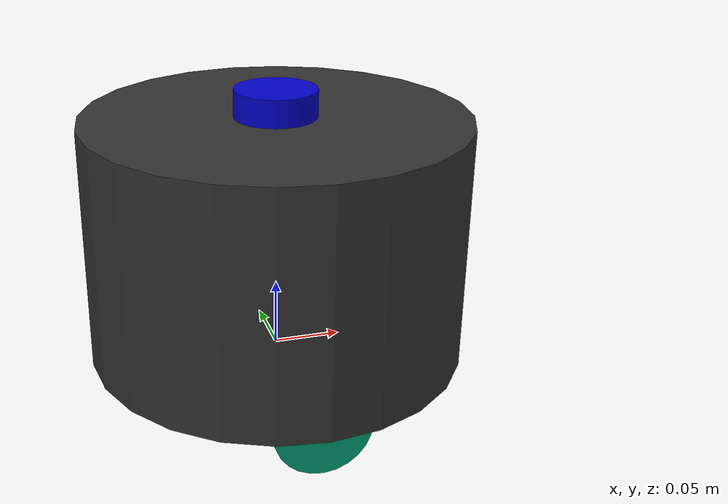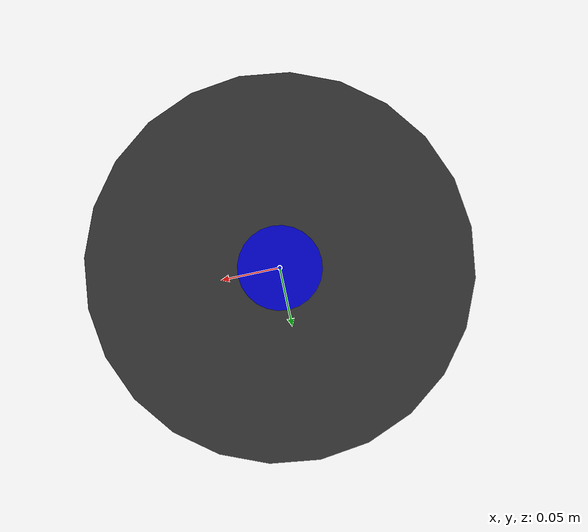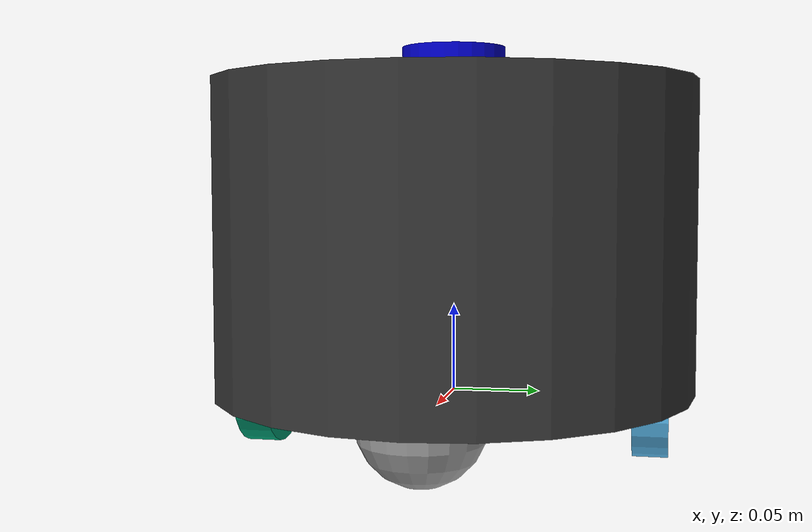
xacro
<?xml version="1.0" ?>
<robot name="independent_robot" xmlns:xacro="http://ros.org/wiki/xacro">

  <xacro:property name="base_radius" value="0.14"/>
  <xacro:property name="base_length" value="0.18"/>
  <xacro:property name="base_mass"   value="2.5"/>

  <xacro:property name="wheel_radius" value="0.035"/>
  <xacro:property name="wheel_length" value="0.02"/>
  <xacro:property name="wheel_mass"   value="0.2"/>
  <xacro:property name="wheel_track"  value="0.23"/>

  <link name="base_link">
    <visual>
      <origin xyz="0 0 ${base_length/2}" rpy="0 0 3.14159"/>
      <geometry>
        <cylinder radius="${base_radius}" length="${base_length}"/>
      </geometry>
      <material name="dark_grey">
        <color rgba="0.2 0.2 0.2 1.0"/>
      </material>
    </visual>
    <collision>
      <origin xyz="0 0 ${base_length/2}" rpy="0 0 0"/>
      <geometry>
        <cylinder radius="${base_radius}" length="${base_length}"/>
      </geometry>
    </collision>
    <inertial>
      <origin xyz="0 0 ${base_length/2}" rpy="0 0 0"/>
      <mass value="${base_mass}"/>
      <inertia ixx="0.0189" ixy="0.0" ixz="0.0" iyy="0.0189" iyz="0.0" izz="0.0245"/>
    </inertial>
  </link>

  <link name="drive_left_wheel">
    <visual>
      <geometry>
        <cylinder radius="${wheel_radius}" length="${wheel_length}"/>
      </geometry>
    </visual>
    <collision>
      <geometry>
        <cylinder radius="${wheel_radius}" length="${wheel_length}"/>
      </geometry>
    </collision>
    <inertial>
    <mass value="${wheel_mass}"/>
    <inertia ixx="0.000067" ixy="0.0" ixz="0.0"
            iyy="0.000067" iyz="0.0"
            izz="0.00012"/>
    </inertial>
  </link>
  <joint name="drive_left_wheel_joint" type="continuous">
    <parent link="base_link"/>
    <child link="drive_left_wheel"/>
    <origin xyz="0 ${wheel_track/2} 0" rpy="-1.5708 0 0"/>
    <axis xyz="0 0 1"/>
  </joint>

  <link name="drive_right_wheel">
    <visual>
      <geometry>
        <cylinder radius="${wheel_radius}" length="${wheel_length}"/>
      </geometry>
    </visual>
    <collision>
      <geometry>
        <cylinder radius="${wheel_radius}" length="${wheel_length}"/>
      </geometry>
    </collision>
    <inertial>
      <mass value="${wheel_mass}"/>
      <inertia ixx="0.000067" ixy="0.0" ixz="0.0"
              iyy="0.000067" iyz="0.0"
              izz="0.00012"/>
    </inertial>
  </link>

  <joint name="drive_right_wheel_joint" type="continuous">
    <parent link="base_link"/>
    <child link="drive_right_wheel"/>
    <origin xyz="0 -${wheel_track/2} 0" rpy="-1.5708 0 0"/>
    <axis xyz="0 0 1"/>
  </joint>

  <link name="caster_wheel">
    <visual>
      <geometry>
        <sphere radius="${wheel_radius}"/>
      </geometry>
      <material name="light_grey">
        <color rgba="0.6 0.6 0.6 1.0"/>
      </material>
    </visual>
    <collision>
      <geometry>
        <sphere radius="${wheel_radius}"/>
      </geometry>
    </collision>
    <inertial>
      <mass value="0.1"/>
      <inertia ixx="0.00004" ixy="0.0" ixz="0.0" iyy="0.00004" iyz="0.0" izz="0.00004"/>
    </inertial>
  </link>

  <joint name="caster_joint" type="fixed">
    <parent link="base_link"/>
    <child link="caster_wheel"/>
    <origin xyz="0.09 0 0" rpy="0 0 0"/>
  </joint>

  <link name="front_caster">
    <visual>
      <geometry>
        <sphere radius="${wheel_radius}"/>
      </geometry>
      <material name="light_grey">
        <color rgba="0.6 0.6 0.6 1.0"/>
      </material>
    </visual>
    <collision>
      <geometry>
        <sphere radius="${wheel_radius}"/>
      </geometry>
    </collision>
    <inertial>
      <mass value="0.1"/>
      <inertia ixx="0.00004" ixy="0.0" ixz="0.0" iyy="0.00004" iyz="0.0" izz="0.00004"/>
    </inertial>
  </link>

  <joint name="front_caster_joint" type="fixed">
    <parent link="base_link"/>
    <child link="front_caster"/>
    <origin xyz="-0.09 0 0" rpy="0 0 0"/>
  </joint>

  <link name="laser_frame">
    <visual>
      <geometry>
        <cylinder radius="0.03" length="0.02"/>
      </geometry>
      <material name="blue">
        <color rgba="0.0 0.0 0.8 1.0"/>
      </material>
    </visual>
  </link>

  <joint name="laser_joint" type="fixed">
    <parent link="base_link"/>
    <child link="laser_frame"/>
    <origin xyz="0 0 ${base_length + 0.01}" rpy="0 0 0"/>
  </joint>

  <gazebo reference="caster_wheel">
    <mu1>1.0</mu1>
    <mu2>1.0</mu2>
    <kp>1000000.0</kp>
    <kd>10.0</kd>
  </gazebo>

  <gazebo reference="front_caster">
    <mu1>1.0</mu1>
    <mu2>1.0</mu2>
    <kp>1000000.0</kp>
    <kd>10.0</kd>
  </gazebo>

  <gazebo reference="drive_left_wheel">
    <mu1>1.0</mu1>
    <mu2>1.0</mu2>
    <kp>1000000.0</kp>
    <kd>10.0</kd>
  </gazebo>

  <gazebo reference="drive_right_wheel">
    <mu1>1.0</mu1>
    <mu2>1.0</mu2>
    <kp>1000000.0</kp>
    <kd>10.0</kd>
  </gazebo>

  <gazebo>
    <plugin filename="gz-sim-diff-drive-system" name="gz::sim::systems::DiffDrive">
      <left_joint>drive_left_wheel_joint</left_joint>
      <right_joint>drive_right_wheel_joint</right_joint>
      <wheel_separation>${wheel_track}</wheel_separation>
      <wheel_radius>${wheel_radius}</wheel_radius>
      <topic>cmd_vel</topic>
    </plugin>

    <plugin filename="gz-sim-odometry-publisher-system" name="gz::sim::systems::OdometryPublisher">
      <odom_frame>odom</odom_frame>
      <robot_base_frame>base_link</robot_base_frame>
      <odom_publish_frequency>50</odom_publish_frequency>
      <odom_topic>/odom</odom_topic>
      <tf_topic>/tf</tf_topic>
      <dimensions>2</dimensions>
    </plugin>
  </gazebo>

  <gazebo>
    <plugin filename="gz-sim-joint-state-publisher-system" name="gz::sim::systems::JointStatePublisher">
      <topic>joint_states</topic>
    </plugin>
  </gazebo>

  <gazebo reference="laser_frame">
    <sensor name="gpu_lidar" type="gpu_lidar">
      <pose>0 0 0 0 0 0</pose>
      <update_rate>10</update_rate>
      <visualize>true</visualize>
      <topic>scan</topic>
      <gz_frame_id>laser_frame</gz_frame_id>
      <lidar>
        <scan>
          <horizontal>
            <samples>640</samples>
            <resolution>1</resolution>
            <min_angle>-3.141592</min_angle>
            <max_angle>3.141592</max_angle>
          </horizontal>
        </scan>
        <range>
          <min>0.08</min>
          <max>10.0</max>
        </range>
      </lidar>
      </sensor>
  </gazebo>

</robot>
